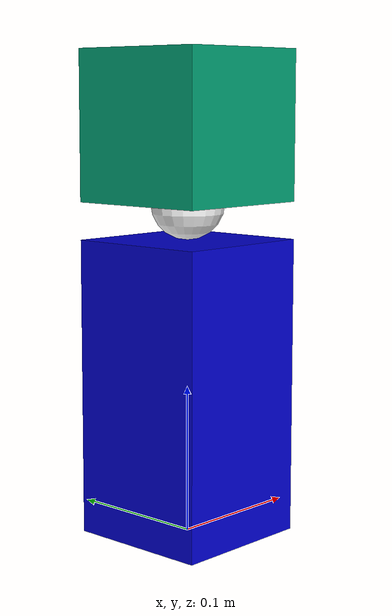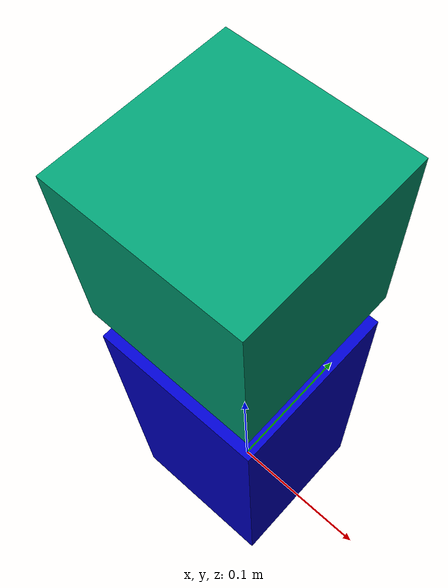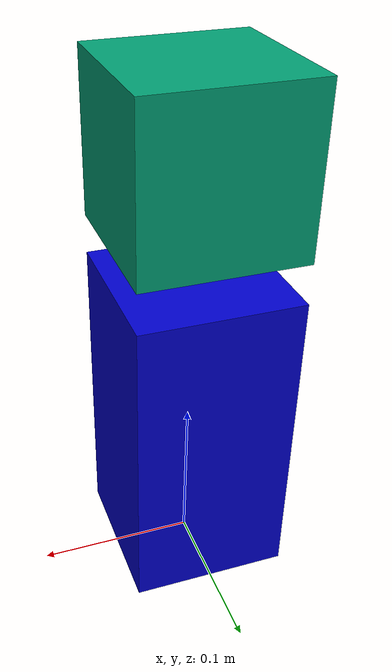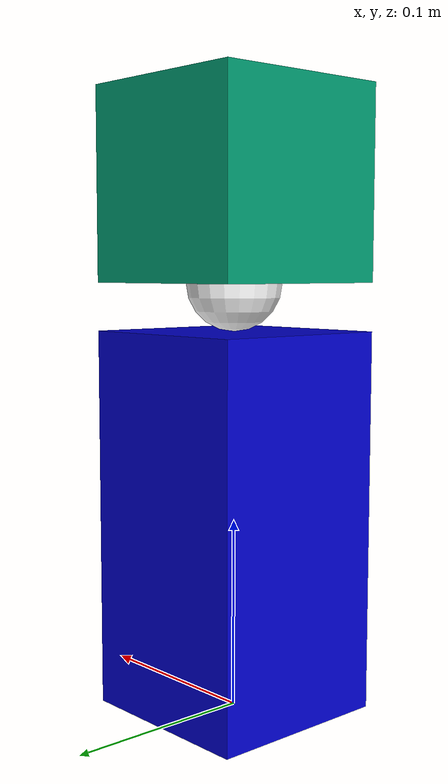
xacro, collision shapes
<?xml version="1.0"?>
<robot xmlns:xacro="http://www.ros.org/wiki/xacro" name="lidar_mount">

    <!-- Constant definitions  -->
    <xacro:property name="width" value="0.1"/>
    <xacro:property name="base_height" value="0.2"/>
    <xacro:property name="lidar_height" value="0.05"/>

    <!-- Import all Gazebo-customization elements, including Gazebo colours -->
    <xacro:include filename="$(find lidar_description)/urdf/lidar.gazebo" />
    <!-- Import Rviz colors -->
    <xacro:include filename="$(find lidar_description)/urdf/materials.xacro" />

    <!-- Base mount link -->
    <link name="base_link">
        <collision>
            <origin xyz="0 0 ${base_height/2}" rpy="0 0 0"/>
            <geometry>
                <box size="${width} ${width} ${base_height}"/>
            </geometry>
        </collision>

        <visual>
            <origin xyz="0 0 ${base_height/2}" rpy="0 0 0"/>
            <geometry>
                <box size="${width} ${width} ${base_height}"/>
            </geometry>
            <material name="blue"/>
        </visual>

        <inertial>
            <mass value="0.1"/>
            <inertia ixx="0.001" iyy="0.001" izz="0.001" ixy="0.0" ixz="0.0"
                iyz="0.0"/>
        </inertial>
    </link>

    <!-- The link representing the lidar's mount -->
    <link name="lidar_mount">
        <collision>
            <origin xyz="0 0 0" rpy="0 0 0"/>
            <geometry>
                <sphere radius="${lidar_height/2}"/>
            </geometry>
        </collision>

        <visual>
            <origin xyz="0 0 0" rpy="0 0 0"/>
            <geometry>
                <box size="${width} ${width} ${lidar_height}"/>
            </geometry>
            <material name="white"/>
        </visual>

        <inertial>
            <mass value="0.1"/>
            <inertia ixx="0.001" iyy="0.001" izz="0.001" ixy="0.0" ixz="0.0"
                iyz="0.0"/>
        </inertial>
    </link>

    <!-- The joint which allows rotation for the lidar -->
    <joint name="tilt_lidar" type="continuous">
        <parent link="base_link"/>
        <child link="lidar_mount"/>
        <origin xyz="0 0 ${base_height+lidar_height/2}" rpy="0 0 0"/>
        <!-- Allows tilting around the Y axis" -->
        <axis xyz="0 1 0"/>
    </joint>

    <!-- The joint affixing the laser to the tilt_lidar platform -->
    <joint name="hokuyo_joint" type="fixed">
        <axis xyz="0 1 0" />
        <origin xyz="0 0 ${lidar_height}" rpy="0 0 0"/>
        <parent link="lidar_mount"/>
        <child link="hokuyo_link"/>
    </joint>

    <!-- Hokuyo Laser -->
    <link name="hokuyo_link">
        <collision>
      	    <origin xyz="0 0 0" rpy="0 0 0"/>
            <geometry>
                <box size="0.1 0.1 0.1"/>
            </geometry>
        </collision>

        <visual>
            <origin xyz="0 0 0" rpy="0 0 0"/>
            <geometry>
                <mesh filename="package://lidar_description/meshes/hokuyo.dae"/>
            </geometry>
        </visual>

        <inertial>
            <mass value="1e-5" />
            <origin xyz="0 0 0" rpy="0 0 0"/>
            <inertia ixx="1e-6" ixy="0" ixz="0" iyy="1e-6" iyz="0" izz="1e-6" />
        </inertial>
    </link>
</robot>

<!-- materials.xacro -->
<robot>
  <material name="blue">
    <color rgba="0.0 0.0 0.8 1.0"/>
  </material>

  <material name="white">
    <color rgba="1.0 1.0 1.0 1.0"/>
  </material>
</robot>
